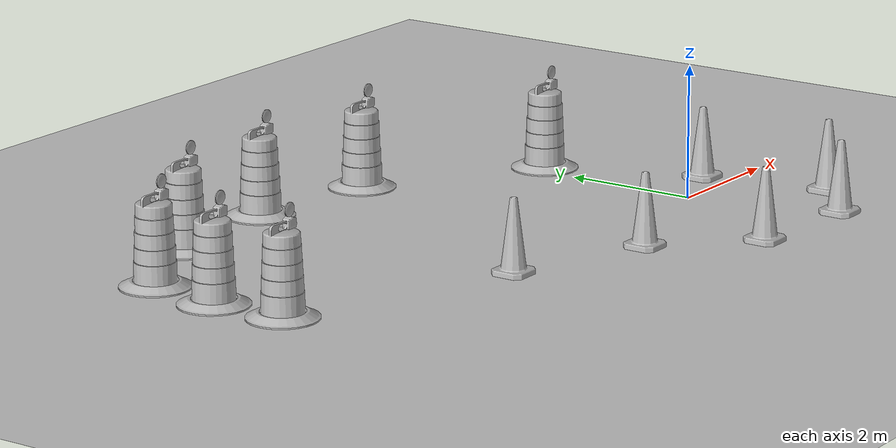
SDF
<sdf version="1.7">
 <world name="default">
  <light name="sun" type="directional">
   <pose>0 0 10 0 -0 0</pose>
   <diffuse>0.8 0.8 0.8 1</diffuse>
   <specular>0.2 0.2 0.2 1</specular>
   <attenuation>
    <range>1000</range>
    <constant>0.9</constant>
    <linear>0.01</linear>
    <quadratic>0.001</quadratic>
   </attenuation>
   <direction>-0.5 0.1 -0.9</direction>
   <spot><inner_angle>0</inner_angle><outer_angle>0</outer_angle><falloff>0</falloff></spot>
  </light>
  <model name="ground_plane">
   <static>1</static>
   <link name="link">
    <collision name="collision">
     <geometry><plane><normal>0 0 1</normal><size>100 100</size></plane></geometry>
     <surface>
      <contact><collide_bitmask>65535</collide_bitmask></contact>
      <friction><ode><mu>100</mu><mu2>50</mu2></ode></friction>
     </surface>
    </collision>
    <visual name="visual">
     <cast_shadows>0</cast_shadows>
     <geometry><plane><normal>0 0 1</normal><size>100 100</size></plane></geometry>
     <material>
      <script><uri>file://media/materials/scripts/gazebo.material</uri><name>Gazebo/Grey</name></script>
     </material>
    </visual>
   </link>
  </model>
  <gravity>0 0 -9.8</gravity>
  <magnetic_field>6e-06 2.3e-05 -4.2e-05</magnetic_field>
  <atmosphere type="adiabatic"/>
  <physics type="ode">
   <max_step_size>0.001</max_step_size>
   <real_time_factor>1</real_time_factor>
   <real_time_update_rate>1000</real_time_update_rate>
  </physics>
  <scene><ambient>0.4 0.4 0.4 1</ambient><background>0.7 0.7 0.7 1</background><shadows>1</shadows></scene>
  <spherical_coordinates>
   <surface_model>EARTH_WGS84</surface_model>
   <latitude_deg>0</latitude_deg>
   <longitude_deg>0</longitude_deg>
   <elevation>0</elevation>
   <heading_deg>0</heading_deg>
  </spherical_coordinates>
  <model name="Construction Barrel">
   <link name="link">
    <inertial>
     <pose>0 0 0.4 0 -0 0</pose>
     <mass>500</mass>
     <inertia><ixx>51.2096</ixx><iyy>51.2096</iyy><izz>25</izz><ixy>0</ixy><ixz>0</ixz><iyz>0</iyz></inertia>
    </inertial>
    <collision name="collision">
     <geometry><mesh><uri>model://construction_barrel/meshes/construction_barrel.dae</uri></mesh></geometry>
    </collision>
    <visual name="visual">
     <geometry><mesh><uri>model://construction_barrel/meshes/construction_barrel.dae</uri></mesh></geometry>
    </visual>
   </link>
   <pose>0.203967 2.67257 -0 0 0 -1.8e-05</pose>
  </model>
  <model name="Construction Cone">
   <link name="link">
    <collision name="collision">
     <geometry>
      <mesh><scale>10 10 10</scale><uri>model://construction_cone/meshes/construction_cone.dae</uri></mesh>
     </geometry>
    </collision>
    <visual name="visual">
     <geometry>
      <mesh><scale>10 10 10</scale><uri>model://construction_cone/meshes/construction_cone.dae</uri></mesh>
     </geometry>
    </visual>
    <inertial>
     <inertia><ixx>1</ixx><ixy>0</ixy><ixz>0</ixz><iyy>1</iyy><iyz>0</iyz><izz>1</izz></inertia>
     <mass>1</mass>
    </inertial>
   </link>
   <pose>1.08121 0.41722 -8e-06 0 1e-06 0</pose>
  </model>
  <model name="Construction Cone_clone">
   <link name="link">
    <collision name="collision">
     <geometry>
      <mesh><scale>10 10 10</scale><uri>model://construction_cone/meshes/construction_cone.dae</uri></mesh>
     </geometry>
    </collision>
    <visual name="visual">
     <geometry>
      <mesh><scale>10 10 10</scale><uri>model://construction_cone/meshes/construction_cone.dae</uri></mesh>
     </geometry>
    </visual>
    <inertial>
     <inertia><ixx>1</ixx><ixy>0</ixy><ixz>0</ixz><iyy>1</iyy><iyz>0</iyz><izz>1</izz></inertia>
     <mass>1</mass>
    </inertial>
   </link>
   <pose>1.51544 -1.48389 -0 0 -0 0</pose>
  </model>
  <model name="Construction Cone_clone_0">
   <link name="link">
    <collision name="collision">
     <geometry>
      <mesh><scale>10 10 10</scale><uri>model://construction_cone/meshes/construction_cone.dae</uri></mesh>
     </geometry>
    </collision>
    <visual name="visual">
     <geometry>
      <mesh><scale>10 10 10</scale><uri>model://construction_cone/meshes/construction_cone.dae</uri></mesh>
     </geometry>
    </visual>
    <inertial>
     <inertia><ixx>1</ixx><ixy>0</ixy><ixz>0</ixz><iyy>1</iyy><iyz>0</iyz><izz>1</izz></inertia>
     <mass>1</mass>
    </inertial>
   </link>
   <pose>0.58258 -2.22127 -0 0 -1e-06 0</pose>
  </model>
  <model name="Construction Cone_clone_1">
   <link name="link">
    <collision name="collision">
     <geometry>
      <mesh><scale>10 10 10</scale><uri>model://construction_cone/meshes/construction_cone.dae</uri></mesh>
     </geometry>
    </collision>
    <visual name="visual">
     <geometry>
      <mesh><scale>10 10 10</scale><uri>model://construction_cone/meshes/construction_cone.dae</uri></mesh>
     </geometry>
    </visual>
    <inertial>
     <inertia><ixx>1</ixx><ixy>0</ixy><ixz>0</ixz><iyy>1</iyy><iyz>0</iyz><izz>1</izz></inertia>
     <mass>1</mass>
    </inertial>
   </link>
   <pose>-1.25783 -2.05122 -0 0 -1e-06 0</pose>
  </model>
  <model name="Construction Cone_clone_2">
   <link name="link">
    <collision name="collision">
     <geometry>
      <mesh><scale>10 10 10</scale><uri>model://construction_cone/meshes/construction_cone.dae</uri></mesh>
     </geometry>
    </collision>
    <visual name="visual">
     <geometry>
      <mesh><scale>10 10 10</scale><uri>model://construction_cone/meshes/construction_cone.dae</uri></mesh>
     </geometry>
    </visual>
    <inertial>
     <inertia><ixx>1</ixx><ixy>0</ixy><ixz>0</ixz><iyy>1</iyy><iyz>0</iyz><izz>1</izz></inertia>
     <mass>1</mass>
    </inertial>
   </link>
   <pose>-4.57526 -0.024397 -0 0 -0 0</pose>
  </model>
  <model name="Construction Cone_clone_3">
   <link name="link">
    <collision name="collision">
     <geometry>
      <mesh><scale>10 10 10</scale><uri>model://construction_cone/meshes/construction_cone.dae</uri></mesh>
     </geometry>
    </collision>
    <visual name="visual">
     <geometry>
      <mesh><scale>10 10 10</scale><uri>model://construction_cone/meshes/construction_cone.dae</uri></mesh>
     </geometry>
    </visual>
    <inertial>
     <inertia><ixx>1</ixx><ixy>0</ixy><ixz>0</ixz><iyy>1</iyy><iyz>0</iyz><izz>1</izz></inertia>
     <mass>1</mass>
    </inertial>
   </link>
   <pose>-2.46935 -0.816204 -0 0 -1e-06 0</pose>
  </model>
  <model name="Construction Barrel_clone">
   <link name="link">
    <inertial>
     <pose>0 0 0.4 0 -0 0</pose>
     <mass>500</mass>
     <inertia><ixx>51.2096</ixx><iyy>51.2096</iyy><izz>25</izz><ixy>0</ixy><ixz>0</ixz><iyz>0</iyz></inertia>
    </inertial>
    <collision name="collision">
     <geometry><mesh><uri>model://construction_barrel/meshes/construction_barrel.dae</uri></mesh></geometry>
    </collision>
    <visual name="visual">
     <geometry><mesh><uri>model://construction_barrel/meshes/construction_barrel.dae</uri></mesh></geometry>
    </visual>
   </link>
   <pose>-2.24349 4.29453 -1e-06 1e-06 -2e-06 -2.3e-05</pose>
  </model>
  <model name="Construction Barrel_clone_0">
   <link name="link">
    <inertial>
     <pose>0 0 0.4 0 -0 0</pose>
     <mass>500</mass>
     <inertia><ixx>51.2096</ixx><iyy>51.2096</iyy><izz>25</izz><ixy>0</ixy><ixz>0</ixz><iyz>0</iyz></inertia>
    </inertial>
    <collision name="collision">
     <geometry><mesh><uri>model://construction_barrel/meshes/construction_barrel.dae</uri></mesh></geometry>
    </collision>
    <visual name="visual">
     <geometry><mesh><uri>model://construction_barrel/meshes/construction_barrel.dae</uri></mesh></geometry>
    </visual>
   </link>
   <pose>-4.29153 4.59479 -2e-06 4e-06 7e-06 -2.1e-05</pose>
  </model>
  <model name="Construction Barrel_clone_1">
   <link name="link">
    <inertial>
     <pose>0 0 0.4 0 -0 0</pose>
     <mass>500</mass>
     <inertia><ixx>51.2096</ixx><iyy>51.2096</iyy><izz>25</izz><ixy>0</ixy><ixz>0</ixz><iyz>0</iyz></inertia>
    </inertial>
    <collision name="collision">
     <geometry><mesh><uri>model://construction_barrel/meshes/construction_barrel.dae</uri></mesh></geometry>
    </collision>
    <visual name="visual">
     <geometry><mesh><uri>model://construction_barrel/meshes/construction_barrel.dae</uri></mesh></geometry>
    </visual>
   </link>
   <pose>-6.24841 4.40496 -2e-06 -7e-06 -4e-06 -1.8e-05</pose>
  </model>
  <model name="Construction Barrel_clone_2">
   <link name="link">
    <inertial>
     <pose>0 0 0.4 0 -0 0</pose>
     <mass>500</mass>
     <inertia><ixx>51.2096</ixx><iyy>51.2096</iyy><izz>25</izz><ixy>0</ixy><ixz>0</ixz><iyz>0</iyz></inertia>
    </inertial>
    <collision name="collision">
     <geometry><mesh><uri>model://construction_barrel/meshes/construction_barrel.dae</uri></mesh></geometry>
    </collision>
    <visual name="visual">
     <geometry><mesh><uri>model://construction_barrel/meshes/construction_barrel.dae</uri></mesh></geometry>
    </visual>
   </link>
   <pose>-7.82053 3.63156 -6e-06 0 -1.3e-05 -1.9e-05</pose>
  </model>
  <model name="Construction Barrel_clone_3">
   <link name="link">
    <inertial>
     <pose>0 0 0.4 0 -0 0</pose>
     <mass>500</mass>
     <inertia><ixx>51.2096</ixx><iyy>51.2096</iyy><izz>25</izz><ixy>0</ixy><ixz>0</ixz><iyz>0</iyz></inertia>
    </inertial>
    <collision name="collision">
     <geometry><mesh><uri>model://construction_barrel/meshes/construction_barrel.dae</uri></mesh></geometry>
    </collision>
    <visual name="visual">
     <geometry><mesh><uri>model://construction_barrel/meshes/construction_barrel.dae</uri></mesh></geometry>
    </visual>
   </link>
   <pose>-8.00002 2.47362 -6e-06 -0 -1.3e-05 -1.7e-05</pose>
  </model>
  <model name="Construction Barrel_clone_4">
   <link name="link">
    <inertial>
     <pose>0 0 0.4 0 -0 0</pose>
     <mass>500</mass>
     <inertia><ixx>51.2096</ixx><iyy>51.2096</iyy><izz>25</izz><ixy>0</ixy><ixz>0</ixz><iyz>0</iyz></inertia>
    </inertial>
    <collision name="collision">
     <geometry><mesh><uri>model://construction_barrel/meshes/construction_barrel.dae</uri></mesh></geometry>
    </collision>
    <visual name="visual">
     <geometry><mesh><uri>model://construction_barrel/meshes/construction_barrel.dae</uri></mesh></geometry>
    </visual>
   </link>
   <pose>-7.93515 1.36191 0 0 0 -1.4e-05</pose>
  </model>
 </world>
</sdf>
